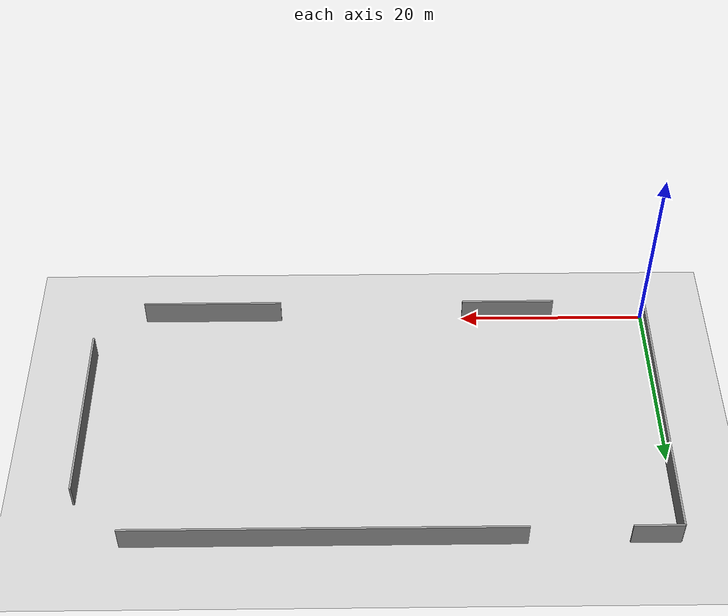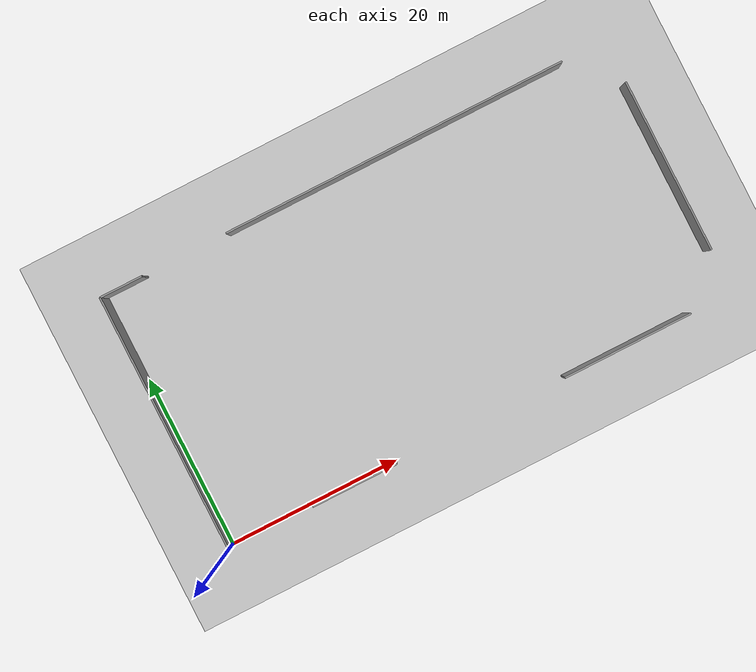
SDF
<?xml version="1.0" ?>

    <!-- this file is auto generated using pedsim_gazebo_plugin pkg -->
    <sdf version="1.5">
      <world name="default">

      <!-- Ground Plane -->

      <include>
        <uri>model://ground_plane</uri>
      </include>

      <include>
        <uri>model://sun</uri>
      </include>

     <model name='grey_wall_1'>
      <static>1</static>
      <link name='link'>

	  <pose frame=''>15.0 0.0  1.4 0 0 0.0</pose>

        <collision name='collision'>
          <geometry>
            <box>

	     <size> 10.0 .2  2.8 </size>

      	   </box>
          </geometry>
          <max_contacts>10</max_contacts>
          <surface>
            <contact>
              <ode/>
            </contact>
            <bounce/>
            <friction>
              <torsional>
                <ode/>
              </torsional>
              <ode/>
            </friction>
          </surface>
        </collision>
        <visual name='visual'>
          <cast_shadows>0</cast_shadows>
          <geometry>
            <box>

	     <size> 10.0 .2  2.8 </size>

      	   </box>
       </geometry>
          <material>
            <script>
              <uri>model://grey_wall/materials/scripts</uri>
              <uri>model://grey_wall/materials/textures</uri>
              <name>vrc/grey_wall</name>
            </script>
          </material>
        </visual>
        <self_collide>0</self_collide>
        <enable_wind>0</enable_wind>
        <kinematic>0</kinematic>
      </link>
    </model>

     <model name='grey_wall_2'>
      <static>1</static>
      <link name='link'>

	  <pose frame=''>0.0 15.0  1.4 0 0 1.57</pose>

        <collision name='collision'>
          <geometry>
            <box>

	     <size> 30.0 .2  2.8 </size>

      	   </box>
          </geometry>
          <max_contacts>10</max_contacts>
          <surface>
            <contact>
              <ode/>
            </contact>
            <bounce/>
            <friction>
              <torsional>
                <ode/>
              </torsional>
              <ode/>
            </friction>
          </surface>
        </collision>
        <visual name='visual'>
          <cast_shadows>0</cast_shadows>
          <geometry>
            <box>

	     <size> 30.0 .2  2.8 </size>

      	   </box>
       </geometry>
          <material>
            <script>
              <uri>model://grey_wall/materials/scripts</uri>
              <uri>model://grey_wall/materials/textures</uri>
              <name>vrc/grey_wall</name>
            </script>
          </material>
        </visual>
        <self_collide>0</self_collide>
        <enable_wind>0</enable_wind>
        <kinematic>0</kinematic>
      </link>
    </model>

     <model name='grey_wall_3'>
      <static>1</static>
      <link name='link'>

	  <pose frame=''>35.0 30.0  1.4 0 0 0.0</pose>

        <collision name='collision'>
          <geometry>
            <box>

	     <size> 40.0 .2  2.8 </size>

      	   </box>
          </geometry>
          <max_contacts>10</max_contacts>
          <surface>
            <contact>
              <ode/>
            </contact>
            <bounce/>
            <friction>
              <torsional>
                <ode/>
              </torsional>
              <ode/>
            </friction>
          </surface>
        </collision>
        <visual name='visual'>
          <cast_shadows>0</cast_shadows>
          <geometry>
            <box>

	     <size> 40.0 .2  2.8 </size>

      	   </box>
       </geometry>
          <material>
            <script>
              <uri>model://grey_wall/materials/scripts</uri>
              <uri>model://grey_wall/materials/textures</uri>
              <name>vrc/grey_wall</name>
            </script>
          </material>
        </visual>
        <self_collide>0</self_collide>
        <enable_wind>0</enable_wind>
        <kinematic>0</kinematic>
      </link>
    </model>

     <model name='grey_wall_4'>
      <static>1</static>
      <link name='link'>

	  <pose frame=''>60.0 15.0  1.4 0 0 1.57</pose>

        <collision name='collision'>
          <geometry>
            <box>

	     <size> 20.0 .2  2.8 </size>

      	   </box>
          </geometry>
          <max_contacts>10</max_contacts>
          <surface>
            <contact>
              <ode/>
            </contact>
            <bounce/>
            <friction>
              <torsional>
                <ode/>
              </torsional>
              <ode/>
            </friction>
          </surface>
        </collision>
        <visual name='visual'>
          <cast_shadows>0</cast_shadows>
          <geometry>
            <box>

	     <size> 20.0 .2  2.8 </size>

      	   </box>
       </geometry>
          <material>
            <script>
              <uri>model://grey_wall/materials/scripts</uri>
              <uri>model://grey_wall/materials/textures</uri>
              <name>vrc/grey_wall</name>
            </script>
          </material>
        </visual>
        <self_collide>0</self_collide>
        <enable_wind>0</enable_wind>
        <kinematic>0</kinematic>
      </link>
    </model>

     <model name='grey_wall_5'>
      <static>1</static>
      <link name='link'>

	  <pose frame=''>47.5 0.0  1.4 0 0 0.0</pose>

        <collision name='collision'>
          <geometry>
            <box>

	     <size> 15.0 .2  2.8 </size>

      	   </box>
          </geometry>
          <max_contacts>10</max_contacts>
          <surface>
            <contact>
              <ode/>
            </contact>
            <bounce/>
            <friction>
              <torsional>
                <ode/>
              </torsional>
              <ode/>
            </friction>
          </surface>
        </collision>
        <visual name='visual'>
          <cast_shadows>0</cast_shadows>
          <geometry>
            <box>

	     <size> 15.0 .2  2.8 </size>

      	   </box>
       </geometry>
          <material>
            <script>
              <uri>model://grey_wall/materials/scripts</uri>
              <uri>model://grey_wall/materials/textures</uri>
              <name>vrc/grey_wall</name>
            </script>
          </material>
        </visual>
        <self_collide>0</self_collide>
        <enable_wind>0</enable_wind>
        <kinematic>0</kinematic>
      </link>
    </model>

     <model name='grey_wall_6'>
      <static>1</static>
      <link name='link'>

	  <pose frame=''>2.5 30.0  1.4 0 0 0.0</pose>

        <collision name='collision'>
          <geometry>
            <box>

	     <size> 5.0 .2  2.8 </size>

      	   </box>
          </geometry>
          <max_contacts>10</max_contacts>
          <surface>
            <contact>
              <ode/>
            </contact>
            <bounce/>
            <friction>
              <torsional>
                <ode/>
              </torsional>
              <ode/>
            </friction>
          </surface>
        </collision>
        <visual name='visual'>
          <cast_shadows>0</cast_shadows>
          <geometry>
            <box>

	     <size> 5.0 .2  2.8 </size>

      	   </box>
       </geometry>
          <material>
            <script>
              <uri>model://grey_wall/materials/scripts</uri>
              <uri>model://grey_wall/materials/textures</uri>
              <name>vrc/grey_wall</name>
            </script>
          </material>
        </visual>
        <self_collide>0</self_collide>
        <enable_wind>0</enable_wind>
        <kinematic>0</kinematic>
      </link>
    </model>

            <plugin name="ActorPosesPlugin" filename="libActorPosesPlugin.dylib">
        </plugin>

      </world>
    </sdf>
